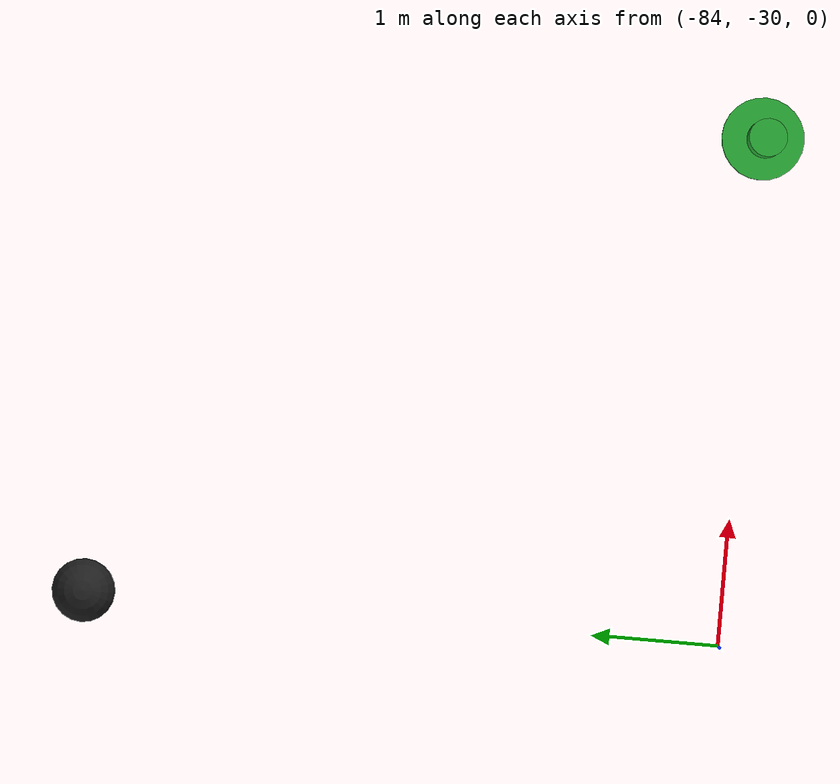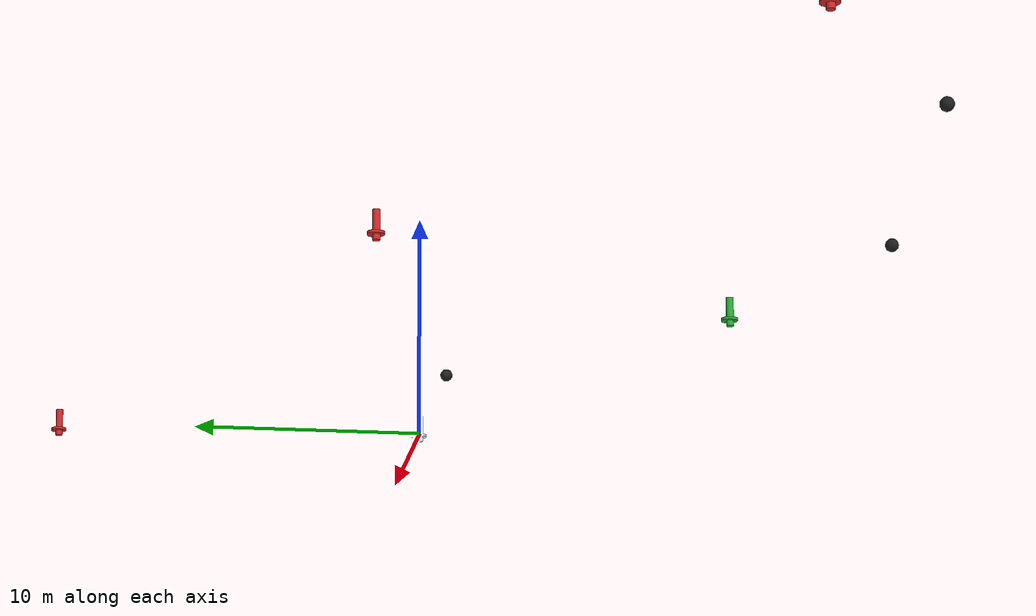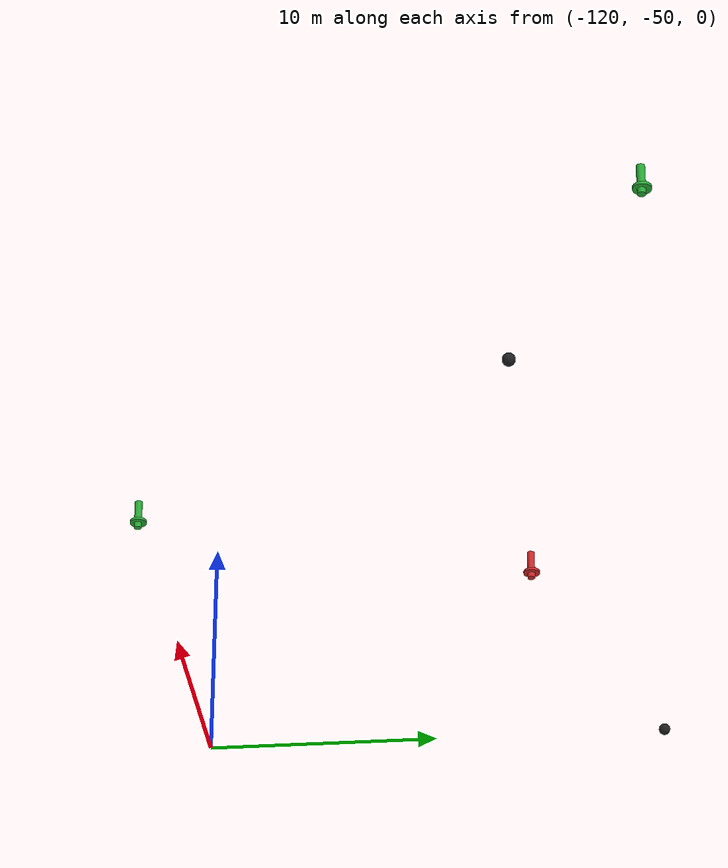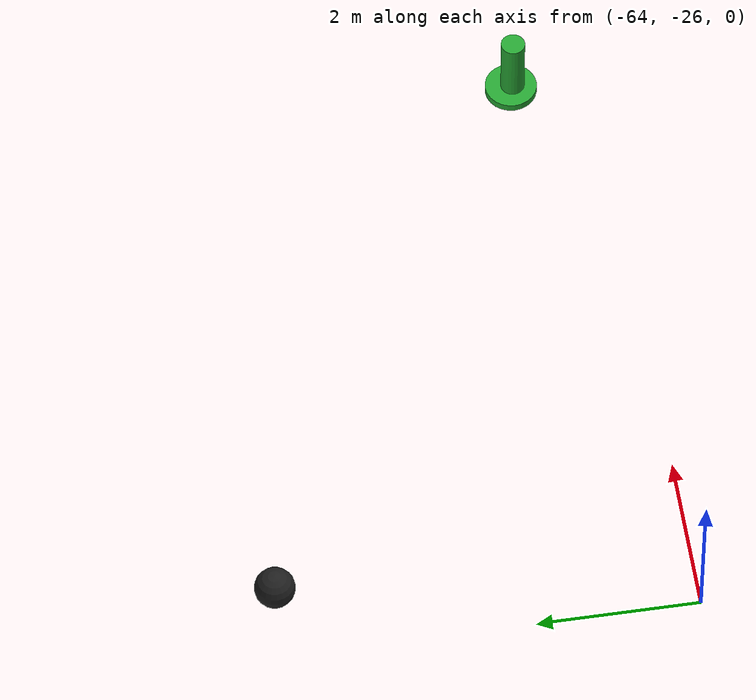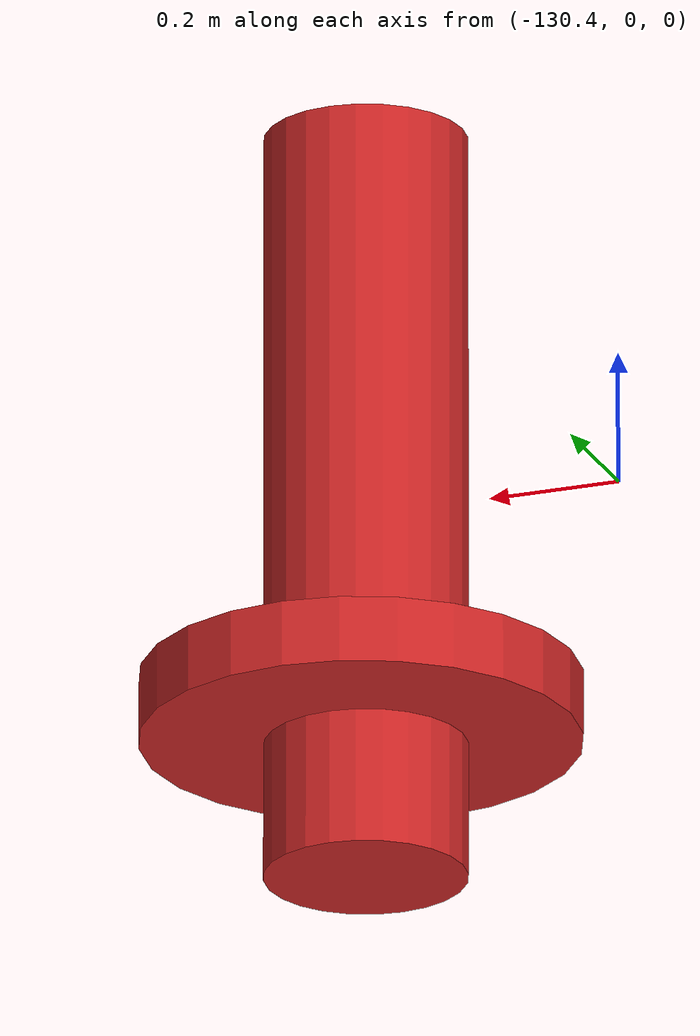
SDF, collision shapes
<?xml version="1.0"?>
<!-- Model for the short navigation course -->
<sdf version="1.6">
  <model name="short_navigation_course_4">

    <!-- Starboard_border -->
    <include>
      <name>red_bound_0</name>
      <pose>0 16 0 0 0 0</pose>
      <uri>https://fuel.gazebosim.org/1.0/openrobotics/models/mb_marker_buoy_red</uri>

      <plugin name="vrx::PolyhedraBuoyancyDrag"
              filename="libPolyhedraBuoyancyDrag.so">
        <fluid_density>1000</fluid_density>
        <fluid_level>0.0</fluid_level>
        <linear_drag>25.0</linear_drag>
        <angular_drag>2.0</angular_drag>
        <buoyancy name="collision_outer">
          <link_name>link</link_name>
          <pose>0 0 -0.3 0 0 0</pose>
          <geometry>
            <cylinder>
              <radius>0.325</radius>
              <length>0.1</length>
            </cylinder>
          </geometry>
        </buoyancy>
        <wavefield>
          <size>1000 1000</size>
          <cell_count>50 50></cell_count>
          <wave>
            <model>PMS</model>
            <period>5.0</period>
            <number>3</number>
            <scale>1.1</scale>
            <gain>0.3</gain>
            <direction>1 0</direction>
            <angle>0.4</angle>
            <tau>2.0</tau>
            <amplitude>0.0</amplitude>
            <steepness>0.0</steepness>
          </wave>
        </wavefield>
      </plugin>

    </include>

    <include>
      <name>red_bound_1</name>
      <pose>-30 5 0 0 0 0</pose>
      <uri>https://fuel.gazebosim.org/1.0/openrobotics/models/mb_marker_buoy_red</uri>

      <plugin name="vrx::PolyhedraBuoyancyDrag"
              filename="libPolyhedraBuoyancyDrag.so">
        <fluid_density>1000</fluid_density>
        <fluid_level>0.0</fluid_level>
        <linear_drag>25.0</linear_drag>
        <angular_drag>2.0</angular_drag>
        <buoyancy name="collision_outer">
          <link_name>link</link_name>
          <pose>0 0 -0.3 0 0 0</pose>
          <geometry>
            <cylinder>
              <radius>0.325</radius>
              <length>0.1</length>
            </cylinder>
          </geometry>
        </buoyancy>
        <wavefield>
          <size>1000 1000</size>
          <cell_count>50 50></cell_count>
          <wave>
            <model>PMS</model>
            <period>5.0</period>
            <number>3</number>
            <scale>1.1</scale>
            <gain>0.3</gain>
            <direction>1 0</direction>
            <angle>0.4</angle>
            <tau>2.0</tau>
            <amplitude>0.0</amplitude>
            <steepness>0.0</steepness>
          </wave>
        </wavefield>
      </plugin>

    </include>

    <include>
      <name>red_bound_2</name>
      <pose>-54 -6 0 0 0 0</pose>
      <uri>https://fuel.gazebosim.org/1.0/openrobotics/models/mb_marker_buoy_red</uri>

      <plugin name="vrx::PolyhedraBuoyancyDrag"
              filename="libPolyhedraBuoyancyDrag.so">
        <fluid_density>1000</fluid_density>
        <fluid_level>0.0</fluid_level>
        <linear_drag>25.0</linear_drag>
        <angular_drag>2.0</angular_drag>
        <buoyancy name="collision_outer">
          <link_name>link</link_name>
          <pose>0 0 -0.3 0 0 0</pose>
          <geometry>
            <cylinder>
              <radius>0.325</radius>
              <length>0.1</length>
            </cylinder>
          </geometry>
        </buoyancy>
        <wavefield>
          <size>1000 1000</size>
          <cell_count>50 50></cell_count>
          <wave>
            <model>PMS</model>
            <period>5.0</period>
            <number>3</number>
            <scale>1.1</scale>
            <gain>0.3</gain>
            <direction>1 0</direction>
            <angle>0.4</angle>
            <tau>2.0</tau>
            <amplitude>0.0</amplitude>
            <steepness>0.0</steepness>
          </wave>
        </wavefield>
      </plugin>

    </include>

    <include>
      <name>red_bound_3</name>
      <pose>-80 -8 0 0 0 0</pose>
      <uri>https://fuel.gazebosim.org/1.0/openrobotics/models/mb_marker_buoy_red</uri>

      <plugin name="vrx::PolyhedraBuoyancyDrag"
              filename="libPolyhedraBuoyancyDrag.so">
        <fluid_density>1000</fluid_density>
        <fluid_level>0.0</fluid_level>
        <linear_drag>25.0</linear_drag>
        <angular_drag>2.0</angular_drag>
        <buoyancy name="collision_outer">
          <link_name>link</link_name>
          <pose>0 0 -0.3 0 0 0</pose>
          <geometry>
            <cylinder>
              <radius>0.325</radius>
              <length>0.1</length>
            </cylinder>
          </geometry>
        </buoyancy>
        <wavefield>
          <size>1000 1000</size>
          <cell_count>50 50></cell_count>
          <wave>
            <model>PMS</model>
            <period>5.0</period>
            <number>3</number>
            <scale>1.1</scale>
            <gain>0.3</gain>
            <direction>1 0</direction>
            <angle>0.4</angle>
            <tau>2.0</tau>
            <amplitude>0.0</amplitude>
            <steepness>0.0</steepness>
          </wave>
        </wavefield>
      </plugin>

    </include>

    <include>
      <name>red_bound_4</name>
      <pose>-105 -35 0 0 0 0</pose>
      <uri>https://fuel.gazebosim.org/1.0/openrobotics/models/mb_marker_buoy_red</uri>

      <plugin name="vrx::PolyhedraBuoyancyDrag"
              filename="libPolyhedraBuoyancyDrag.so">
        <fluid_density>1000</fluid_density>
        <fluid_level>0.0</fluid_level>
        <linear_drag>25.0</linear_drag>
        <angular_drag>2.0</angular_drag>
        <buoyancy name="collision_outer">
          <link_name>link</link_name>
          <pose>0 0 -0.3 0 0 0</pose>
          <geometry>
            <cylinder>
              <radius>0.325</radius>
              <length>0.1</length>
            </cylinder>
          </geometry>
        </buoyancy>
        <wavefield>
          <size>1000 1000</size>
          <cell_count>50 50></cell_count>
          <wave>
            <model>PMS</model>
            <period>5.0</period>
            <number>3</number>
            <scale>1.1</scale>
            <gain>0.3</gain>
            <direction>1 0</direction>
            <angle>0.4</angle>
            <tau>2.0</tau>
            <amplitude>0.0</amplitude>
            <steepness>0.0</steepness>
          </wave>
        </wavefield>
      </plugin>

    </include>

    <include>
      <name>red_bound_5</name>
      <pose>-130 0 0 0 0 0</pose>
      <uri>https://fuel.gazebosim.org/1.0/openrobotics/models/mb_marker_buoy_red</uri>

      <plugin name="vrx::PolyhedraBuoyancyDrag"
              filename="libPolyhedraBuoyancyDrag.so">
        <fluid_density>1000</fluid_density>
        <fluid_level>0.0</fluid_level>
        <linear_drag>25.0</linear_drag>
        <angular_drag>2.0</angular_drag>
        <buoyancy name="collision_outer">
          <link_name>link</link_name>
          <pose>0 0 -0.3 0 0 0</pose>
          <geometry>
            <cylinder>
              <radius>0.325</radius>
              <length>0.1</length>
            </cylinder>
          </geometry>
        </buoyancy>
        <wavefield>
          <size>1000 1000</size>
          <cell_count>50 50></cell_count>
          <wave>
            <model>PMS</model>
            <period>5.0</period>
            <number>3</number>
            <scale>1.1</scale>
            <gain>0.3</gain>
            <direction>1 0</direction>
            <angle>0.4</angle>
            <tau>2.0</tau>
            <amplitude>0.0</amplitude>
            <steepness>0.0</steepness>
          </wave>
        </wavefield>
      </plugin>

    </include>

    <!-- Port_border -->
    <include>
      <name>green_bound_0</name>
      <pose>0 0 0.2 0 0 0</pose>
      <uri>https://fuel.gazebosim.org/1.0/openrobotics/models/mb_marker_buoy_white</uri>

      <plugin name="vrx::PolyhedraBuoyancyDrag"
              filename="libPolyhedraBuoyancyDrag.so">
        <fluid_density>1000</fluid_density>
        <fluid_level>0.0</fluid_level>
        <linear_drag>25.0</linear_drag>
        <angular_drag>2.0</angular_drag>
        <buoyancy name="collision_outer">
          <link_name>link</link_name>
          <pose>0 0 -0.3 0 0 0</pose>
          <geometry>
            <cylinder>
              <radius>0.325</radius>
              <length>0.1</length>
            </cylinder>
          </geometry>
        </buoyancy>
        <wavefield>
          <size>1000 1000</size>
          <cell_count>50 50></cell_count>
          <wave>
            <model>PMS</model>
            <period>5.0</period>
            <number>3</number>
            <scale>1.1</scale>
            <gain>0.3</gain>
            <direction>1 0</direction>
            <angle>0.4</angle>
            <tau>2.0</tau>
            <amplitude>0.0</amplitude>
            <steepness>0.0</steepness>
          </wave>
        </wavefield>
      </plugin>

    </include>

    <include>
      <name>green_bound_1</name>
      <pose>-20 -10 0.2 0 0 0</pose>
      <uri>https://fuel.gazebosim.org/1.0/openrobotics/models/mb_marker_buoy_green</uri>

      <plugin name="vrx::PolyhedraBuoyancyDrag"
              filename="libPolyhedraBuoyancyDrag.so">
        <fluid_density>1000</fluid_density>
        <fluid_level>0.0</fluid_level>
        <linear_drag>25.0</linear_drag>
        <angular_drag>2.0</angular_drag>
        <buoyancy name="collision_outer">
          <link_name>link</link_name>
          <pose>0 0 -0.3 0 0 0</pose>
          <geometry>
            <cylinder>
              <radius>0.325</radius>
              <length>0.1</length>
            </cylinder>
          </geometry>
        </buoyancy>
        <wavefield>
          <size>1000 1000</size>
          <cell_count>50 50></cell_count>
          <wave>
            <model>PMS</model>
            <period>5.0</period>
            <number>3</number>
            <scale>1.1</scale>
            <gain>0.3</gain>
            <direction>1 0</direction>
            <angle>0.4</angle>
            <tau>2.0</tau>
            <amplitude>0.0</amplitude>
            <steepness>0.0</steepness>
          </wave>
        </wavefield>
      </plugin>

    </include>

    <include>
      <name>green_bound_2</name>
      <pose>-56 -25 0.2 0 0 0</pose>
      <uri>https://fuel.gazebosim.org/1.0/openrobotics/models/mb_marker_buoy_green</uri>
      <plugin name="vrx::PolyhedraBuoyancyDrag"
              filename="libPolyhedraBuoyancyDrag.so">
        <fluid_density>1000</fluid_density>
        <fluid_level>0.0</fluid_level>
        <linear_drag>25.0</linear_drag>
        <angular_drag>2.0</angular_drag>
        <buoyancy name="collision_outer">
          <link_name>link</link_name>
          <pose>0 0 -0.3 0 0 0</pose>
          <geometry>
            <cylinder>
              <radius>0.325</radius>
              <length>0.1</length>
            </cylinder>
          </geometry>
        </buoyancy>
        <wavefield>
          <size>1000 1000</size>
          <cell_count>50 50></cell_count>
          <wave>
            <model>PMS</model>
            <period>5.0</period>
            <number>3</number>
            <scale>1.1</scale>
            <gain>0.3</gain>
            <direction>1 0</direction>
            <angle>0.4</angle>
            <tau>2.0</tau>
            <amplitude>0.0</amplitude>
            <steepness>0.0</steepness>
          </wave>
        </wavefield>
      </plugin>

    </include>

    <include>
      <name>green_bound_3</name>
      <pose>-80 -30 0.2 0 0 0</pose>
      <uri>https://fuel.gazebosim.org/1.0/openrobotics/models/mb_marker_buoy_green</uri>
      <plugin name="vrx::PolyhedraBuoyancyDrag"
              filename="libPolyhedraBuoyancyDrag.so">
        <fluid_density>1000</fluid_density>
        <fluid_level>0.0</fluid_level>
        <linear_drag>25.0</linear_drag>
        <angular_drag>2.0</angular_drag>
        <buoyancy name="collision_outer">
          <link_name>link</link_name>
          <pose>0 0 -0.3 0 0 0</pose>
          <geometry>
            <cylinder>
              <radius>0.325</radius>
              <length>0.1</length>
            </cylinder>
          </geometry>
        </buoyancy>
        <wavefield>
          <size>1000 1000</size>
          <cell_count>50 50></cell_count>
          <wave>
            <model>PMS</model>
            <period>5.0</period>
            <number>3</number>
            <scale>1.1</scale>
            <gain>0.3</gain>
            <direction>1 0</direction>
            <angle>0.4</angle>
            <tau>2.0</tau>
            <amplitude>0.0</amplitude>
            <steepness>0.0</steepness>
          </wave>
        </wavefield>
      </plugin>

    </include>

    <include>
      <name>green_bound_4</name>
      <pose>-100 -50 0.2 0 0 0</pose>
      <uri>https://fuel.gazebosim.org/1.0/openrobotics/models/mb_marker_buoy_green</uri>
      <plugin name="vrx::PolyhedraBuoyancyDrag"
              filename="libPolyhedraBuoyancyDrag.so">
        <fluid_density>1000</fluid_density>
        <fluid_level>0.0</fluid_level>
        <linear_drag>25.0</linear_drag>
        <angular_drag>2.0</angular_drag>
        <buoyancy name="collision_outer">
          <link_name>link</link_name>
          <pose>0 0 -0.3 0 0 0</pose>
          <geometry>
            <cylinder>
              <radius>0.325</radius>
              <length>0.1</length>
            </cylinder>
          </geometry>
        </buoyancy>
        <wavefield>
          <size>1000 1000</size>
          <cell_count>50 50></cell_count>
          <wave>
            <model>PMS</model>
            <period>5.0</period>
            <number>3</number>
            <scale>1.1</scale>
            <gain>0.3</gain>
            <direction>1 0</direction>
            <angle>0.4</angle>
            <tau>2.0</tau>
            <amplitude>0.0</amplitude>
            <steepness>0.0</steepness>
          </wave>
        </wavefield>
      </plugin>

    </include>

    <include>
      <name>green_bound_5</name>
      <pose>-131 -20 0.2 0 0 0</pose>
      <uri>https://fuel.gazebosim.org/1.0/openrobotics/models/mb_marker_buoy_black</uri>
      <plugin name="vrx::PolyhedraBuoyancyDrag"
              filename="libPolyhedraBuoyancyDrag.so">
        <fluid_density>1000</fluid_density>
        <fluid_level>0.0</fluid_level>
        <linear_drag>25.0</linear_drag>
        <angular_drag>2.0</angular_drag>
        <buoyancy name="collision_outer">
          <link_name>link</link_name>
          <pose>0 0 -0.3 0 0 0</pose>
          <geometry>
            <cylinder>
              <radius>0.325</radius>
              <length>0.1</length>
            </cylinder>
          </geometry>
        </buoyancy>
        <wavefield>
          <size>1000 1000</size>
          <cell_count>50 50></cell_count>
          <wave>
            <model>PMS</model>
            <period>5.0</period>
            <number>3</number>
            <scale>1.1</scale>
            <gain>0.3</gain>
            <direction>1 0</direction>
            <angle>0.4</angle>
            <tau>2.0</tau>
            <amplitude>0.0</amplitude>
            <steepness>0.0</steepness>
          </wave>
        </wavefield>
      </plugin>

    </include>

    <!-- Obstacles -->
    <include>
      <name>obstacle_0</name>
      <pose>-10 0 0.0 0 0 0 </pose>
      <uri>https://fuel.gazebosim.org/1.0/openrobotics/models/mb_round_buoy_black</uri>
      <plugin name="vrx::PolyhedraBuoyancyDrag"
              filename="libPolyhedraBuoyancyDrag.so">
        <fluid_density>1000</fluid_density>
        <fluid_level>0.0</fluid_level>
        <linear_drag>25.0</linear_drag>
        <angular_drag>2.0</angular_drag>
        <buoyancy name="collision_outer">
          <link_name>link</link_name>
          <pose>0 0 0 0 0 0</pose>
          <geometry>
            <sphere>
              <radius>0.25</radius>
          </sphere>
          </geometry>
        </buoyancy>
        <wavefield>
          <topic>/vrx/wavefield/parameters</topic>
        </wavefield>
      </plugin>
    </include>

    <include>
      <name>obstacle_1</name>
      <pose>-30 -14 0.0 0 0 0 </pose>
      <uri>https://fuel.gazebosim.org/1.0/openrobotics/models/mb_round_buoy_black</uri>
      <plugin name="vrx::PolyhedraBuoyancyDrag"
              filename="libPolyhedraBuoyancyDrag.so">
        <fluid_density>1000</fluid_density>
        <fluid_level>0.0</fluid_level>
        <linear_drag>25.0</linear_drag>
        <angular_drag>2.0</angular_drag>
        <buoyancy name="collision_outer">
          <link_name>link</link_name>
          <pose>0 0 0 0 0 0</pose>
          <geometry>
            <sphere>
              <radius>0.25</radius>
          </sphere>
          </geometry>
        </buoyancy>
        <wavefield>
          <topic>/vrx/wavefield/parameters</topic>
        </wavefield>
      </plugin>
    </include>

    <include>
      <name>obstacle_2</name>
      <pose>-45 -12 0.0 0 0 0 </pose>
      <uri>https://fuel.gazebosim.org/1.0/openrobotics/models/mb_round_buoy_black</uri>
      <plugin name="vrx::PolyhedraBuoyancyDrag"
              filename="libPolyhedraBuoyancyDrag.so">
        <fluid_density>1000</fluid_density>
        <fluid_level>0.0</fluid_level>
        <linear_drag>25.0</linear_drag>
        <angular_drag>2.0</angular_drag>
        <buoyancy name="collision_outer">
          <link_name>link</link_name>
          <pose>0 0 0 0 0 0</pose>
          <geometry>
            <sphere>
              <radius>0.25</radius>
          </sphere>
          </geometry>
        </buoyancy>
        <wavefield>
          <topic>/vrx/wavefield/parameters</topic>
        </wavefield>
      </plugin>
    </include>

    <include>
      <name>obstacle_3</name>
      <pose>-63 -21 0.0 0 0 0 </pose>
      <uri>https://fuel.gazebosim.org/1.0/openrobotics/models/mb_round_buoy_black</uri>
      <plugin name="vrx::PolyhedraBuoyancyDrag"
              filename="libPolyhedraBuoyancyDrag.so">
        <fluid_density>1000</fluid_density>
        <fluid_level>0.0</fluid_level>
        <linear_drag>25.0</linear_drag>
        <angular_drag>2.0</angular_drag>
        <buoyancy name="collision_outer">
          <link_name>link</link_name>
          <pose>0 0 0 0 0 0</pose>
          <geometry>
            <sphere>
              <radius>0.25</radius>
          </sphere>
          </geometry>
        </buoyancy>
        <wavefield>
          <topic>/vrx/wavefield/parameters</topic>
        </wavefield>
      </plugin>
    </include>

    <include>
      <name>obstacle_4</name>
      <pose>-84 -25 0.0 0 0 0 </pose>
      <uri>https://fuel.gazebosim.org/1.0/openrobotics/models/mb_round_buoy_black</uri>
      <plugin name="vrx::PolyhedraBuoyancyDrag"
              filename="libPolyhedraBuoyancyDrag.so">
        <fluid_density>1000</fluid_density>
        <fluid_level>0.0</fluid_level>
        <linear_drag>25.0</linear_drag>
        <angular_drag>2.0</angular_drag>
        <buoyancy name="collision_outer">
          <link_name>link</link_name>
          <pose>0 0 0 0 0 0</pose>
          <geometry>
            <sphere>
              <radius>0.25</radius>
          </sphere>
          </geometry>
        </buoyancy>
        <wavefield>
          <topic>/vrx/wavefield/parameters</topic>
        </wavefield>
      </plugin>
    </include>

    <include>
      <name>obstacle_5</name>
      <pose>-90 -35 0.0 0 0 0 </pose>
      <uri>https://fuel.gazebosim.org/1.0/openrobotics/models/mb_round_buoy_black</uri>
      <plugin name="vrx::PolyhedraBuoyancyDrag"
              filename="libPolyhedraBuoyancyDrag.so">
        <fluid_density>1000</fluid_density>
        <fluid_level>0.0</fluid_level>
        <linear_drag>25.0</linear_drag>
        <angular_drag>2.0</angular_drag>
        <buoyancy name="collision_outer">
          <link_name>link</link_name>
          <pose>0 0 0 0 0 0</pose>
          <geometry>
            <sphere>
              <radius>0.25</radius>
          </sphere>
          </geometry>
        </buoyancy>
        <wavefield>
          <topic>/vrx/wavefield/parameters</topic>
        </wavefield>
      </plugin>
    </include>

    <include>
      <name>obstacle_6</name>
      <pose>-120 -30 0.0 0 0 0 </pose>
      <uri>https://fuel.gazebosim.org/1.0/openrobotics/models/mb_round_buoy_black</uri>
      <plugin name="vrx::PolyhedraBuoyancyDrag"
              filename="libPolyhedraBuoyancyDrag.so">
        <fluid_density>1000</fluid_density>
        <fluid_level>0.0</fluid_level>
        <linear_drag>25.0</linear_drag>
        <angular_drag>2.0</angular_drag>
        <buoyancy name="collision_outer">
          <link_name>link</link_name>
          <pose>0 0 0 0 0 0</pose>
          <geometry>
            <sphere>
              <radius>0.25</radius>
          </sphere>
          </geometry>
        </buoyancy>
        <wavefield>
          <topic>/vrx/wavefield/parameters</topic>
        </wavefield>
      </plugin>
    </include>

  </model>

</sdf>

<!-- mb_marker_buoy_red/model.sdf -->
<sdf version="1.6">
  <model name="mb_marker_buoy_red">
    <link name="link">
      <inertial>
        <pose>0 0 -2 0 0 0</pose>
        <!-- Mass determined based on buoyancy geometry so object
             floats at mid-point of sphere -->
        <mass>20</mass>
        <!-- Mark only - based on cylinder -->
        <inertia>
          <ixx>1.0</ixx>
          <ixy>0</ixy>
          <ixz>0</ixz>
          <iyy>1.0</iyy>
          <iyz>0</iyz>
          <izz>0.1</izz>
        </inertia>
      </inertial>
      <collision name="collision_inner">
        <pose>0 -0.02 0.02 0 0 0</pose>
        <geometry>
          <cylinder>
            <radius>0.15</radius>
            <length>1.15</length>
          </cylinder>
        </geometry>
      </collision>
      <collision name="collision_outer">
        <pose>0 0 -0.3 0 0 0</pose>
        <geometry>
          <cylinder>
            <radius>0.325</radius>
            <length>0.1</length>
          </cylinder>
        </geometry>
      </collision>
      <visual name="visual">
        <pose>0 0 0 1.57079 0 0</pose>
        <geometry>
	        <mesh><uri>model://mb_marker_buoy_red/meshes/mb_marker_buoy.dae</uri></mesh>
        </geometry>
        <material>
          <script>
            <uri>model://mb_marker_buoy_red/materials/scripts/mb_marker_buoy.material</uri>
            <name>mb_marker_buoy/Red</name>
          </script>
        </material>
      </visual>
    </link>
    <plugin name="BuoyancyPlugin" filename="libbuoyancy_gazebo_plugin.so">
      <wave_model>ocean_waves</wave_model>
      <fluid_density>1000</fluid_density>
      <fluid_level>0.0</fluid_level>
      <linear_drag>25.0</linear_drag>
      <angular_drag>2.0</angular_drag>
      <buoyancy name="buoyancy_sphere">
        <link_name>link</link_name>
        <pose>0 0 -0.12 0 0 0</pose>
        <geometry>
          <sphere>
            <radius>0.325</radius>
          </sphere>
        </geometry>
      </buoyancy>
    </plugin>
  </model>
</sdf>

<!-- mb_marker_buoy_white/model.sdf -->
<sdf version="1.6">
  <model name="mb_marker_buoy_white">
    <link name="link">
      <inertial>
        <pose>0 0 -2 0 0 0</pose>
        <!-- Mass determined based on buoyancy geometry so object
             floats at mid-point of sphere -->
        <mass>20</mass>
        <!-- Mark only - based on cylinder -->
        <inertia>
          <ixx>1.0</ixx>
          <ixy>0</ixy>
          <ixz>0</ixz>
          <iyy>1.0</iyy>
          <iyz>0</iyz>
          <izz>0.1</izz>
        </inertia>
      </inertial>
      <collision name="collision_inner">
        <pose>0 -0.02 0.02 0 0 0</pose>
        <geometry>
          <cylinder>
            <radius>0.15</radius>
            <length>1.15</length>
          </cylinder>
        </geometry>
      </collision>
      <collision name="collision_outer">
        <pose>0 0 -0.3 0 0 0</pose>
        <geometry>
          <cylinder>
            <radius>0.325</radius>
            <length>0.1</length>
          </cylinder>
        </geometry>
      </collision>
      <visual name="visual">
        <pose>0 0 0 1.57079 0 0</pose>
        <geometry>
	        <mesh><uri>model://mb_marker_buoy_red/meshes/mb_marker_buoy.dae</uri></mesh>
        </geometry>
        <material>
          <script>
            <uri>file://media/materials/scripts/gazebo.material</uri>
            <name>Gazebo/White</name>
          </script>
        </material>
      </visual>
    </link>
    <plugin name="BuoyancyPlugin" filename="libbuoyancy_gazebo_plugin.so">
      <wave_model>ocean_waves</wave_model>
      <fluid_density>1000</fluid_density>
      <fluid_level>0.0</fluid_level>
      <linear_drag>25.0</linear_drag>
      <angular_drag>2.0</angular_drag>
      <buoyancy name="buoyancy_sphere">
        <link_name>link</link_name>
        <pose>0 0 -0.12 0 0 0</pose>
        <geometry>
          <sphere>
            <radius>0.325</radius>
          </sphere>
        </geometry>
      </buoyancy>
    </plugin>
  </model>
</sdf>

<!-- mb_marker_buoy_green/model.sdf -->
<sdf version="1.6">
  <model name="mb_marker_buoy_green">
    <link name="link">
      <inertial>
        <pose>0 0 -2 0 0 0</pose>
        <!-- Mass determined based on buoyancy geometry so object
             floats at mid-point of sphere -->
        <mass>20</mass>
        <!-- Mark only - based on cylinder -->
        <inertia>
          <ixx>1.0</ixx>
          <ixy>0</ixy>
          <ixz>0</ixz>
          <iyy>1.0</iyy>
          <iyz>0</iyz>
          <izz>0.1</izz>
        </inertia>
      </inertial>
      <collision name="collision_inner">
        <pose>0 -0.02 0.02 0 0 0</pose>
        <geometry>
          <cylinder>
            <radius>0.15</radius>
            <length>1.15</length>
          </cylinder>
        </geometry>
      </collision>
      <collision name="collision_outer">
        <pose>0 0 -0.3 0 0 0</pose>
        <geometry>
          <cylinder>
            <radius>0.325</radius>
            <length>0.1</length>
          </cylinder>
        </geometry>
      </collision>
      <visual name="visual">
        <pose>0 0 0 1.57079 0 0</pose>
        <geometry>
	        <mesh><uri>model://mb_marker_buoy_red/meshes/mb_marker_buoy.dae</uri></mesh>
        </geometry>
        <material>
          <script>
            <uri>model://mb_marker_buoy_green/materials/scripts/mb_marker_buoy.material</uri>
            <name>mb_marker_buoy/Green</name>
          </script>
        </material>
      </visual>
    </link>
    <plugin name="BuoyancyPlugin" filename="libbuoyancy_gazebo_plugin.so">
      <wave_model>ocean_waves</wave_model>
      <fluid_density>1000</fluid_density>
      <fluid_level>0.0</fluid_level>
      <linear_drag>25.0</linear_drag>
      <angular_drag>2.0</angular_drag>
      <buoyancy name="buoyancy_sphere">
        <link_name>link</link_name>
        <pose>0 0 -0.12 0 0 0</pose>
        <geometry>
          <sphere>
            <radius>0.325</radius>
          </sphere>
        </geometry>
      </buoyancy>
    </plugin>
  </model>
</sdf>

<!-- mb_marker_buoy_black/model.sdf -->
<sdf version="1.6">
  <model name="mb_marker_buoy_black">
    <link name="link">
      <inertial>
        <pose>0 0 -2 0 0 0</pose>
        <!-- Mass determined based on buoyancy geometry so object
             floats at mid-point of sphere -->
        <mass>20</mass>
        <!-- Mark only - based on cylinder -->
        <inertia>
          <ixx>1.0</ixx>
          <ixy>0</ixy>
          <ixz>0</ixz>
          <iyy>1.0</iyy>
          <iyz>0</iyz>
          <izz>0.1</izz>
        </inertia>
      </inertial>
      <collision name="collision_inner">
        <pose>0 -0.02 0.02 0 0 0</pose>
        <geometry>
          <cylinder>
            <radius>0.15</radius>
            <length>1.15</length>
          </cylinder>
        </geometry>
      </collision>
      <collision name="collision_outer">
        <pose>0 0 -0.3 0 0 0</pose>
        <geometry>
          <cylinder>
            <radius>0.325</radius>
            <length>0.1</length>
          </cylinder>
        </geometry>
      </collision>
      <visual name="visual">
        <pose>0 0 0 1.57079 0 0</pose>
        <geometry>
	        <mesh><uri>model://mb_marker_buoy_red/meshes/mb_marker_buoy.dae</uri></mesh>
        </geometry>
        <material>
          <script>
            <uri>file://media/materials/scripts/gazebo.material</uri>
            <name>Gazebo/Black</name>
          </script>
        </material>
      </visual>
    </link>
    <plugin name="BuoyancyPlugin" filename="libbuoyancy_gazebo_plugin.so">
      <wave_model>ocean_waves</wave_model>
      <fluid_density>1000</fluid_density>
      <fluid_level>0.0</fluid_level>
      <linear_drag>25.0</linear_drag>
      <angular_drag>2.0</angular_drag>
      <buoyancy name="buoyancy_sphere">
        <link_name>link</link_name>
        <pose>0 0 -0.12 0 0 0</pose>
        <geometry>
          <sphere>
            <radius>0.325</radius>
          </sphere>
        </geometry>
      </buoyancy>
    </plugin>
  </model>
</sdf>

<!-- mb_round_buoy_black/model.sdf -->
<sdf version="1.6">
  <model name="mb_round_buoy_black">
    <link name="link">
      <inertial>
        <pose>0 0 -2 0 0 0</pose>
        <!-- Mass determined based on buoyancy geometry so object
             floats at mid-point of sphere -->
        <mass>3.5</mass>
        <!-- Mark only - based on cylinder -->
        <inertia>
          <ixx>1.0</ixx>
          <ixy>0</ixy>
          <ixz>0</ixz>
          <iyy>1.0</iyy>
          <iyz>0</iyz>
          <izz>0.1</izz>
        </inertia>
      </inertial>
      <collision name="collision">
        <geometry>
          <sphere>
            <radius>0.25</radius>
          </sphere>
        </geometry>
      </collision>
      <visual name="visual">
        <geometry>
	        <mesh><uri>model://mb_round_buoy_orange/meshes/mb_round_buoy.dae</uri></mesh>
        </geometry>
        <material>
          <script>
            <uri>file://media/materials/scripts/gazebo.material</uri>
            <name>Gazebo/Black</name>
          </script>
        </material>
      </visual>
    </link>
    <plugin name="BuoyancyPlugin" filename="libbuoyancy_gazebo_plugin.so">
      <wave_model>ocean_waves</wave_model>
      <fluid_density>1000</fluid_density>
      <fluid_level>0.0</fluid_level>
      <linear_drag>25.0</linear_drag>
      <angular_drag>2.0</angular_drag>
      <buoyancy name="buoyancy_sphere">
        <link_name>link</link_name>
        <pose>0 0 0.02 0 0 0</pose>
        <geometry>
          <sphere>
            <radius>0.235</radius>
          </sphere>
        </geometry>
      </buoyancy>
    </plugin>
  </model>
</sdf>
